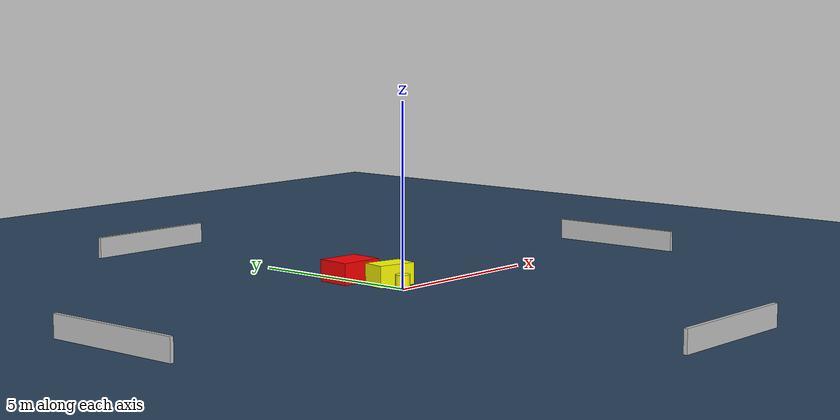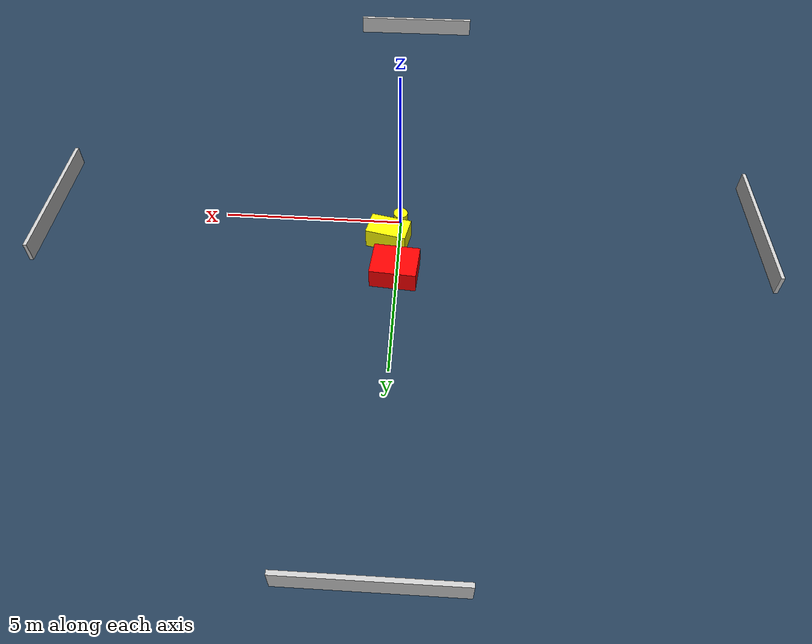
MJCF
<?xml version="1.0" ?>
<mujoco model="generated_environment">
  <option timestep="0.01" integrator="RK4" cone="elliptic"/>
  <default>
    <geom density="1"/>
  </default>
  <asset>
    <texture builtin="gradient" height="3072" name="skybox" rgb1="0.3 0.5 0.7" rgb2="0 0 0" type="skybox" width="512"/>
    <texture builtin="checker" height="300" name="groundplane" rgb1="0.2 0.3 0.4" rgb2="0.1 0.2 0.3" type="2d" width="300"/>
    <material name="groundplane" reflectance="0.2" texrepeat="5 5" texture="groundplane"/>
  </asset>
  <worldbody>
    <light dir="0 0 -1" directional="true" pos="0 0 1.5"/>
    <geom condim="3" friction="0.5 0.005 0.001" material="groundplane" name="floor" pos="0 0 0" size="0 0 0.05" type="plane"/>
    <body name="walls">
      <geom name="wall_1" condim="4" pos="-10.0 0.0 0.3" rgba="0.800000011920929 0.800000011920929 0.800000011920929 1.0" size="0.05 2.0 0.3" type="box"/>
      <geom name="wall_2" condim="4" pos="10.0 0.0 0.3" rgba="0.800000011920929 0.800000011920929 0.800000011920929 1.0" size="0.05 2.0 0.3" type="box"/>
      <geom name="wall_3" condim="4" pos="0.0 -10.0 0.3" rgba="0.800000011920929 0.800000011920929 0.800000011920929 1.0" size="2.0 0.05 0.3" type="box"/>
      <geom name="wall_4" condim="4" pos="0.0 10.0 0.3" rgba="0.800000011920929 0.800000011920929 0.800000011920929 1.0" size="2.0 0.05 0.3" type="box"/>
    </body>
    <body name="robot">
      <joint name="joint_x" type="slide" pos="0 0 0" axis="1 0 0"/>
      <joint name="joint_y" type="slide" pos="0 0 0" axis="0 1 0"/>
      <geom name="robot" type="cylinder" pos="0.0 0.0 0.2" size="0.2 0.2 0.0" mass="5.0" friction="1.0 0.005 0.0001" condim="4" rgba="1.0 1.0 0.0 1.0"/>
    </body>
    <body name="obstacle_1_movable">
      <geom name="obstacle_1_movable" condim="4" pos="0.2925782970191493 0.7193808830597574 0.3" euler="0 0 257.9992421442989" friction="0.0 0.005 0.001" rgba="1.0 1.0 0.0 1.0" size="0.34385808083833835 0.5588341603040273 0.3" type="box" mass="0.1"/>
      <joint type="free"/>
    </body>
    <body name="obstacle_2_static">
      <geom name="obstacle_2_static" condim="4" pos="0.04054944867480314 1.9429639791815494 0.3" euler="0 0 265.19621215272673" friction="0.0 0.005 0.001" rgba="1.0 0.0 0.0 1.0" size="0.4906049651270446 0.6201137020195584 0.3" type="box"/>
    </body>
  </worldbody>
  <actuator>
    <motor name="actuator_x" joint="joint_x" gear="1" ctrlrange="-1 1"/>
    <motor name="actuator_y" joint="joint_y" gear="1" ctrlrange="-1 1"/>
  </actuator>
</mujoco>
